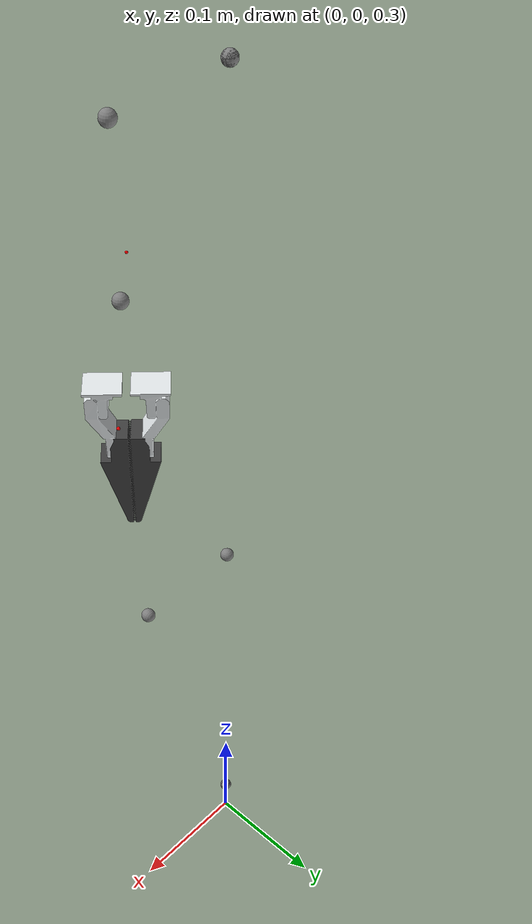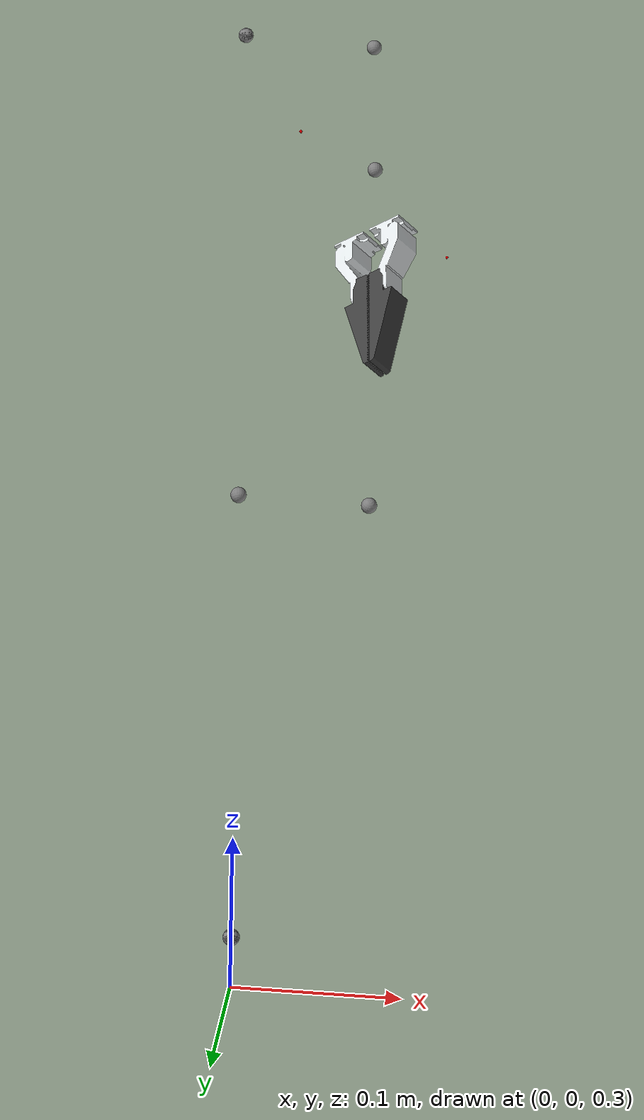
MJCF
<mujoco model="franka_panda">
  <compiler angle="radian" meshdir="assets/"/>

  <default>
    <default class="panda">
      <material shininess="0.25"/>
      <joint range="-2.8973 2.8973" armature="0.1" damping="1"/>
      <default class="finger">
        <joint type="slide" range="0 0.04"/>
      </default>
      <default class="visual">
        <geom type="mesh" contype="0" conaffinity="0" group="2"/>
      </default>
      <default class="collision">
        <geom type="mesh" group="3"/>
      </default>
    </default>
    <default class="d435i">
      <material specular="0" shininess="0.25"/>
      <default class="d435i_visual">
        <geom type="mesh" contype="0" conaffinity="0" group="2"/>
      </default>
      <default class="d435i_collision">
        <geom type="mesh" group="3"/>
      </default>
    </default>
  </default>

  <asset>
    <material name="white" class="panda"/>
    <material name="off_white" class="panda" rgba="0.901961 0.921569 0.929412 1"/>
    <material name="black" class="panda" rgba="0.25 0.25 0.25 1"/>
    <material name="green" class="panda" rgba="0 1 0 1"/>
    <material name="light_blue" class="panda" rgba="0.039216 0.541176 0.780392 1"/>
    <material name="Black_Acrylic" class="d435i" rgba="0.07036 0.07036 0.07036 1"/>
    <material name="Cameras_Gray" class="d435i" rgba="0.296138 0.296138 0.296138 1"/>
    <material name="IR_Emitter_Lens" class="d435i" rgba="0.28744 0.665387 0.327778 1"/>
    <material name="IR_Lens" class="d435i" rgba="0.035601 0.035601 0.035601 1"/>
    <material name="IR_Rim" class="d435i" rgba="0.799102 0.806952 0.799103 1"/>
    <material name="Metal_Casing" class="d435i"/>
    <material name="RGB_Pupil" class="d435i" rgba="0.08714 0.002866 0.009346 1"/>
    <mesh name="link0_c" file="link0.stl"/>
    <mesh name="link1_c" file="link1.stl"/>
    <mesh name="link2_c" file="link2.stl"/>
    <mesh name="link3_c" file="link3.stl"/>
    <mesh name="link4_c" file="link4.stl"/>
    <mesh name="link5_c0" file="link5_collision_0.obj"/>
    <mesh name="link5_c1" file="link5_collision_1.obj"/>
    <mesh name="link5_c2" file="link5_collision_2.obj"/>
    <mesh name="link6_c" file="link6.stl"/>
    <mesh name="link7_c" file="link7.stl"/>
    <mesh name="camera_mount_c" file="camera_mount_collision_straight.stl"/>
    <mesh name="hand_c" file="hand.stl"/>
    <mesh name="gripper_long_inner" file="gripper_long_inner_new.stl"/>
    <mesh name="gripper_long_outer" file="gripper_long_outer_new.stl"/>
    <mesh name="gripper_long" file="gripper_long.stl"/>
    <mesh name="link0_0" file="link0_0.obj"/>
    <mesh name="link0_1" file="link0_1.obj"/>
    <mesh name="link0_2" file="link0_2.obj"/>
    <mesh name="link0_3" file="link0_3.obj"/>
    <mesh name="link0_4" file="link0_4.obj"/>
    <mesh name="link0_5" file="link0_5.obj"/>
    <mesh name="link0_7" file="link0_7.obj"/>
    <mesh name="link0_8" file="link0_8.obj"/>
    <mesh name="link0_9" file="link0_9.obj"/>
    <mesh name="link0_10" file="link0_10.obj"/>
    <mesh name="link0_11" file="link0_11.obj"/>
    <mesh name="link1" file="link1.obj"/>
    <mesh name="link2" file="link2.obj"/>
    <mesh name="link3_0" file="link3_0.obj"/>
    <mesh name="link3_1" file="link3_1.obj"/>
    <mesh name="link3_2" file="link3_2.obj"/>
    <mesh name="link3_3" file="link3_3.obj"/>
    <mesh name="link4_0" file="link4_0.obj"/>
    <mesh name="link4_1" file="link4_1.obj"/>
    <mesh name="link4_2" file="link4_2.obj"/>
    <mesh name="link4_3" file="link4_3.obj"/>
    <mesh name="link5_0" file="link5_0.obj"/>
    <mesh name="link5_1" file="link5_1.obj"/>
    <mesh name="link5_2" file="link5_2.obj"/>
    <mesh name="link6_0" file="link6_0.obj"/>
    <mesh name="link6_1" file="link6_1.obj"/>
    <mesh name="link6_2" file="link6_2.obj"/>
    <mesh name="link6_3" file="link6_3.obj"/>
    <mesh name="link6_4" file="link6_4.obj"/>
    <mesh name="link6_5" file="link6_5.obj"/>
    <mesh name="link6_6" file="link6_6.obj"/>
    <mesh name="link6_7" file="link6_7.obj"/>
    <mesh name="link6_8" file="link6_8.obj"/>
    <mesh name="link6_9" file="link6_9.obj"/>
    <mesh name="link6_10" file="link6_10.obj"/>
    <mesh name="link6_11" file="link6_11.obj"/>
    <mesh name="link6_12" file="link6_12.obj"/>
    <mesh name="link6_13" file="link6_13.obj"/>
    <mesh name="link6_14" file="link6_14.obj"/>
    <mesh name="link6_15" file="link6_15.obj"/>
    <mesh name="link6_16" file="link6_16.obj"/>
    <mesh name="link7_0" file="link7_0.obj"/>
    <mesh name="link7_1" file="link7_1.obj"/>
    <mesh name="link7_2" file="link7_2.obj"/>
    <mesh name="link7_3" file="link7_3.obj"/>
    <mesh name="link7_4" file="link7_4.obj"/>
    <mesh name="link7_5" file="link7_5.obj"/>
    <mesh name="link7_6" file="link7_6.obj"/>
    <mesh name="link7_7" file="link7_7.obj"/>
    <mesh name="camera_mount" file="camera_mount_straight_visual.stl"/>
    <mesh name="hand_0" file="hand_0.obj"/>
    <mesh name="hand_1" file="hand_1.obj"/>
    <mesh name="hand_2" file="hand_2.obj"/>
    <mesh name="hand_3" file="hand_3.obj"/>
    <mesh name="hand_4" file="hand_4.obj"/>
    <mesh name="finger_0" file="finger_0.obj"/>
    <mesh name="finger_1" file="finger_1.obj"/>
    <mesh name="d435i_0" file="d435i_0.obj"/>
    <mesh name="d435i_1" file="d435i_1.obj"/>
    <mesh name="d435i_2" file="d435i_2.obj"/>
    <mesh name="d435i_3" file="d435i_3.obj"/>
    <mesh name="d435i_4" file="d435i_4.obj"/>
    <mesh name="d435i_5" file="d435i_5.obj"/>
    <mesh name="d435i_6" file="d435i_6.obj"/>
    <mesh name="d435i_7" file="d435i_7.obj"/>
    <mesh name="d435i_8" file="d435i_8.obj"/>
  </asset>

  <worldbody>
    <body name="link0" childclass="panda">
      <inertial pos="-0.041018 -0.00014 0.049974" quat="0.00630474 0.751245 0.00741774 0.659952" mass="0.629769" diaginertia="0.00430465 0.00387984 0.00313051"/>
      <geom class="collision" mesh="link0_c"/>
      <body name="link1" pos="0 0 0.333">
        <inertial pos="0.003875 0.002081 -0.04762" quat="0.711549 0.00634377 -0.0131124 0.702485" mass="4.97068" diaginertia="0.707137 0.703435 0.00852456"/>
        <joint name="joint1" pos="0 0 0" axis="0 0 1"/>
        <geom class="collision" mesh="link1_c"/>
        <site name="joint1" pos="0 0 0"/>
        <body name="link2" quat="0.707107 -0.707107 0 0">
          <inertial pos="-0.003141 -0.02872 0.003495" quat="-0.168175 0.828366 -0.122878 0.520027" mass="0.646926" diaginertia="0.0310326 0.0283001 0.00273425"/>
          <joint name="joint2" pos="0 0 0" axis="0 0 1" range="-1.7628 1.7628"/>
          <geom class="collision" mesh="link2_c"/>
          <site name="joint2" pos="0 0 0"/>
          <body name="link3" pos="0 -0.316 0" quat="0.707107 0.707107 0 0">
            <inertial pos="0.027518 0.039252 -0.066502" quat="0.662769 -0.00678331 0.252053 0.705096" mass="3.2286" diaginertia="0.0415014 0.0414793 0.00124635"/>
            <joint name="joint3" pos="0 0 0" axis="0 0 1"/>
            <geom class="collision" mesh="link3_c"/>
            <site name="joint3" pos="0 0 0"/>
            <body name="link4" pos="0.0825 0 0" quat="0.707107 0.707107 0 0">
              <inertial pos="-0.05317 0.104419 0.027454" quat="0.65058 0.529822 -0.0962034 0.535518" mass="3.5879" diaginertia="0.0349596 0.0281483 0.0106201"/>
              <joint name="joint4" pos="0 0 0" axis="0 0 1" range="-3.0718 -0.0698"/>
              <geom class="collision" mesh="link4_c"/>
              <site name="joint4" pos="0 0 0"/>
              <body name="link5" pos="-0.0825 0.384 0" quat="0.707107 -0.707107 0 0">
                <inertial pos="-0.011953 0.041065 -0.038437" quat="0.987313 -0.0121954 0.0719187 -0.141037" mass="1.22595" diaginertia="0.0367625 0.0288531 0.00803437"/>
                <joint name="joint5" pos="0 0 0" axis="0 0 1"/>
                <geom class="collision" mesh="link5_c0"/>
                <geom class="collision" mesh="link5_c1"/>
                <geom class="collision" mesh="link5_c2"/>
                <site name="joint5" pos="0 0 0"/>
                <body name="link6" quat="0.707107 0.707107 0 0">
                  <inertial pos="0.060149 -0.014117 -0.010517" quat="0.101075 0.59332 0.0287227 0.798079" mass="1.66656" diaginertia="0.00584276 0.00431037 0.00159787"/>
                  <joint name="joint6" pos="0 0 0" axis="0 0 1" range="-0.0175 3.7525"/>
                  <geom class="collision" mesh="link6_c"/>
                  <site name="joint6" pos="0 0 0"/>
                  <body name="link7" pos="0.088 0 0" quat="0.707107 0.707107 0 0">
                    <inertial pos="0.010517 -0.004252 0.061597" quat="0.992939 -0.0762041 0.0733595 -0.0537067" mass="0.735522" diaginertia="0.0127345 0.0101055 0.00451803"/>
                    <joint name="joint7" pos="0 0 0" axis="0 0 1"/>
                    <geom class="collision" mesh="link7_c"/>
                    <site name="joint7" pos="0 0 0"/>
                    <body name="camera_mount" pos="0 0 0.107">
                      <inertial pos="0 0 0" mass="0.5" diaginertia="0 0 0"/>
                      <geom class="collision" mesh="camera_mount_c"/>
                      <body name="d435i_1" childclass="d435i" pos="-0.079892 0.03393 0.026921" quat="0.909844 0.16043 0.0664523 0.37687">
                        <geom class="d435i_collision" size="0.00968864 0.0334784" pos="0.00145113 -0.000319327 -0.0135412" quat="0.029024 0.708312 0.0275527 0.704764" type="capsule" mass="0"/>
                        <site name="camera_1_site" pos="0.0325 0 -0.003" size="0.001" rgba="1 0 0 1"/>
                        <body name="wrist1" pos="0.0325 0 -0.003" quat="0 0 1 0">
                          <camera name="wrist1" pos="0 0 0" fovy="42"/>
                        </body>
                      </body>
                      <body name="d435i_2" childclass="d435i" pos="0.079892 -0.03393 0.026921" quat="0.376958 0.0664679 -0.160424 -0.909807">
                        <geom class="d435i_collision" size="0.00968864 0.0334784" pos="0.00145113 -0.000319327 -0.0135412" quat="0.029024 0.708312 0.0275527 0.704764" type="capsule" mass="0"/>
                        <site name="camera_2_site" pos="0.0325 0 -0.003" quat="0 0 1 0" size="0.001" rgba="1 0 0 1"/>
                        <body name="wrist2" pos="0.0325 0 -0.003" quat="0 0 1 0">
                          <camera name="wrist2" pos="0 0 0" fovy="42"/>
                        </body>
                      </body>
                      <body name="hand" pos="0 0 0.0016" quat="0.92388 0 0 -0.382683">
                        <inertial pos="-0.01 0 0.03" mass="0.73" diaginertia="0.001 0.0025 0.0017"/>
                        <geom class="collision" mesh="hand_c"/>
                        <site name="attachment_site" pos="0 0 0" quat="0 0 0 1"/>
                        <body name="pinch" pos="0 0 0.105">
                          <site name="pinch" pos="0 0 0" size="0.01" group="3" rgba="1 0 0 1"/>
                        </body>
                        <body name="long_pinch" pos="0 0 0.135">
                          <site name="long_pinch" pos="0 0 0" size="0.01" group="3" rgba="1 0 0 1"/>
                        </body>
                        <body name="left_finger" pos="0 0 0.0584">
                          <inertial pos="0 0 0" mass="0.015" diaginertia="2.375e-06 2.375e-06 7.5e-07"/>
                          <joint name="finger_joint1" class="finger" pos="0 0 0" axis="0 1 0"/>
                          <geom class="visual" material="off_white" mesh="finger_0"/>
                          <geom class="collision" mesh="finger_0"/>
                          <geom name="left_finger_outer" class="collision" friction="2.0 0.1 0.05" mesh="gripper_long_outer" solref="0.01 0.5"/>
                          <geom name="left_finger_inner" class="collision" friction="2.0 0.1 0.05" mesh="gripper_long_inner" solref="0.01 0.5"/>
                          <geom class="visual" material="black" mesh="gripper_long"/>
                          <site name="left_pinch" pos="0 0 0.0835" size="0.001" group="3" rgba="1 0 0 1"/>
                        </body>
                        <body name="right_finger" pos="0 0 0.0584" quat="0 0 0 1">
                          <inertial pos="0 0 0" mass="0.015" diaginertia="2.375e-06 2.375e-06 7.5e-07"/>
                          <joint name="finger_joint2" class="finger" pos="0 0 0" axis="0 1 0"/>
                          <geom class="visual" material="off_white" mesh="finger_0"/>
                          <geom class="collision" mesh="finger_0"/>
                          <geom name="right_finger_outer" class="collision" friction="2.0 0.1 0.05" mesh="gripper_long_outer" solref="0.01 0.5"/>
                          <geom name="right_finger_inner" class="collision" friction="2.0 0.1 0.05" mesh="gripper_long_inner" solref="0.01 0.5" group="4"/>
                          <geom class="visual" material="black" mesh="gripper_long"/>
                          <site name="right_pinch" pos="0 0 0.0835" size="0.001" group="3" rgba="1 0 0 1"/>
                        </body>
                      </body>
                    </body>
                  </body>
                </body>
              </body>
            </body>
          </body>
        </body>
      </body>
    </body>
  </worldbody>

  <equality>
    <joint joint1="finger_joint1" joint2="finger_joint2" solimp="0.95 0.99 0.001" solref="0.005 1"/>
  </equality>

  <actuator>
    <general name="actuator1" class="panda" joint="joint1" forcerange="-87 87"/>
    <general name="actuator2" class="panda" joint="joint2" forcerange="-87 87"/>
    <general name="actuator3" class="panda" joint="joint3" forcerange="-87 87"/>
    <general name="actuator4" class="panda" joint="joint4" forcerange="-87 87"/>
    <general name="actuator5" class="panda" joint="joint5" forcerange="-12 12"/>
    <general name="actuator6" class="panda" joint="joint6" forcerange="-12 12"/>
    <general name="actuator7" class="panda" joint="joint7" forcerange="-12 12"/>
    <position name="fingers_actuator" joint="finger_joint1" kp="5000" kv="500" ctrlrange="0 0.04" forcerange="-100 100"/>
  </actuator>

  <sensor>
    <force site="attachment_site" name="panda/wrist_force"/>
    <framepos objtype="site" objname="pinch" name="pinch_pos"/>
    <framepos objtype="site" objname="left_pinch" name="left_pinch_pos"/>
    <framepos objtype="site" objname="right_pinch" name="right_pinch_pos"/>
    <framequat objtype="site" objname="pinch" name="pinch_quat"/>
    <framelinvel objtype="site" objname="pinch" name="pinch_vel"/>
    <framepos objtype="site" objname="long_pinch" name="long_pinch_pos"/>
    <framequat objtype="site" objname="long_pinch" name="long_pinch_quat"/>
    <framelinvel objtype="site" objname="long_pinch" name="long_pinch_vel"/>
  </sensor>
</mujoco>
